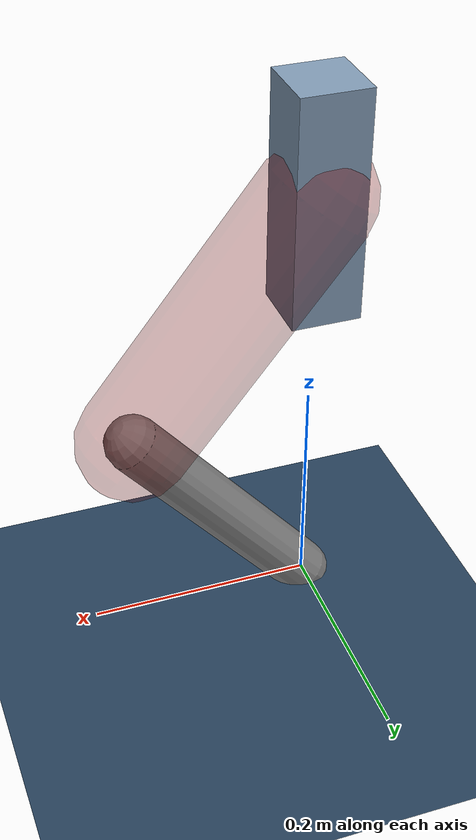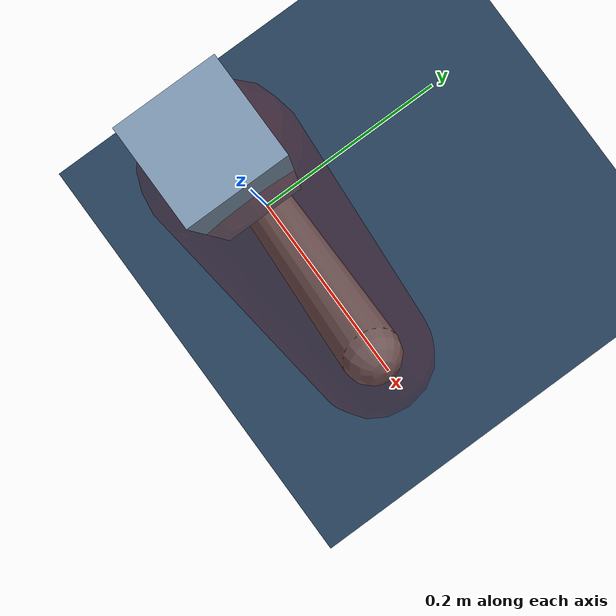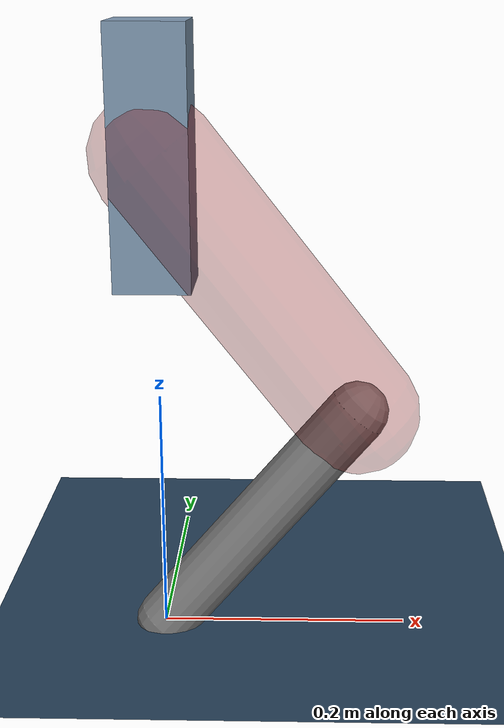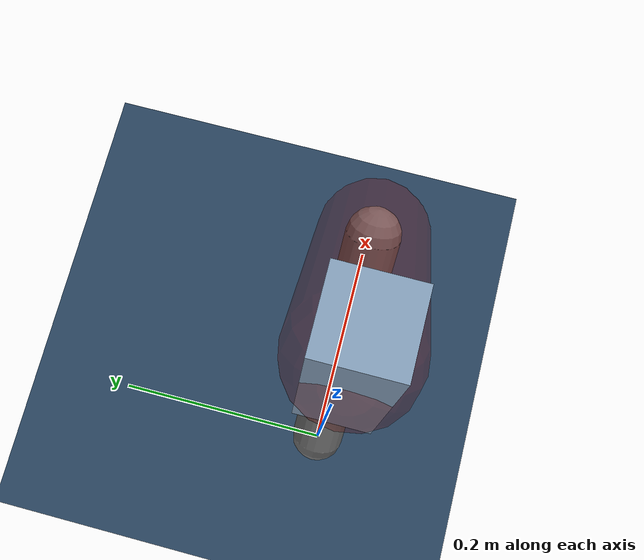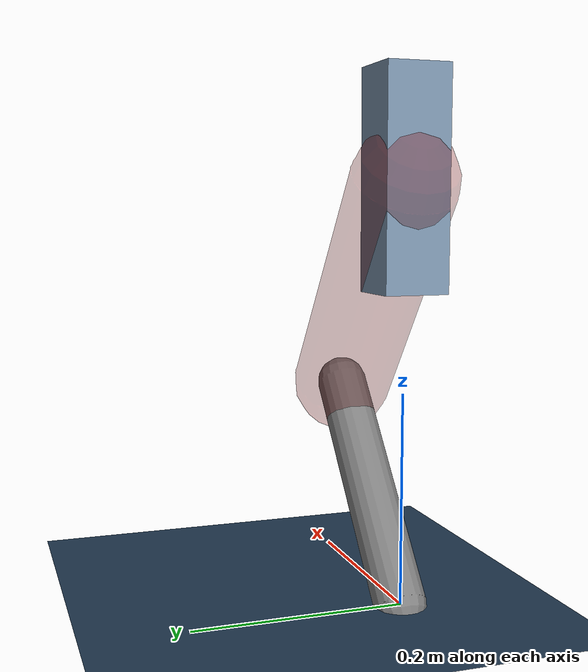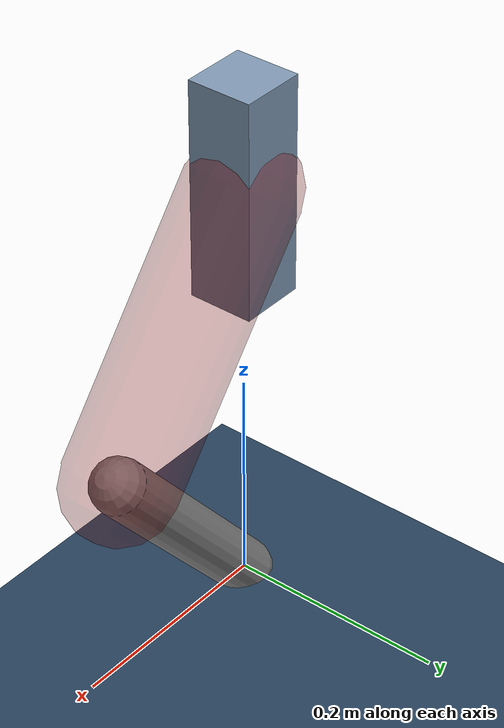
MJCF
<mujoco model="Hopper2D">
	<compiler inertiafromgeom="true" angle="radian" />
	<option timestep="0.001" integrator="implicit" cone="elliptic" solver="Newton" tolerance="1e-10" />

	<default>
		<geom contype="1" conaffinity="1" condim="3" friction="2 0.005 0.0001" solref="0.005 1" />
		<joint limited="true" damping="0.1" />
	</default>

	<asset>
		<texture name="skybox" type="skybox" builtin="gradient" rgb1=".4 .6 .8" rgb2="0 0 0" width="800" height="800" />
		<texture name="grid" type="2d" builtin="checker" rgb1=".1 .2 .3" rgb2=".2 .3 .4" width="300" height="300" mark="edge" markrgb=".2 .3 .4" />
		<material name="ground" texture="grid" texrepeat="1 1" texuniform="true" reflectance="0.1" />
		<material name="leg" rgba="0.5 0.6 0.7 1" />
	</asset>

	<worldbody>

		<geom name="floor" type="plane" size="5 5 0.25" material="ground" />

		<light directional="false" diffuse="0.8 0.8 0.8" specular="0.3 0.3 0.3" pos="0 0 2" dir="0 0 -1" />
		<light mode="targetbodycom" target="base" directional="false" diffuse="0.8 0.8 0.8" specular="0.3 0.3 0.3" pos="0 0 2" dir="0 0 -1" />

		<camera name="fixed" pos="0 -2 1" xyaxes="1 0 0 0 0 1" />
		<camera name="tracking" mode="trackcom" pos="0 -3 1" />

		<body name="root" pos="0 0 0.39229954173370113">
			<joint name="slide_x" type="slide" axis="1 0 0" range="-100 100" />
			<joint name="slide_z" type="slide" axis="0 0 1" range="0 10" />

			<body name="base" pos="0 0 0">
				<geom name="torso" type="box" size="0.03 0.03 0.1" mass="1.983" material="leg" />

				<body name="link1" pos="0 0 0" euler="0 0.9094413909460389 0">
					<joint type="hinge" axis="0 -1 0" pos="0 0 0" name="hinge1" limited="true" range="-3.14 3.14" stiffness="0" damping="0.1" />
					<geom name="thigh" type="capsule" fromto="0 0 0 0.25834925897601424 0 0" size="0.05" rgba="0.5 0 0 0.3" mass="0.878108073337637" />

					<body name="link2" pos="0.25834925897601424 0 0" euler="0 1.3612627976137839 0">
						<joint type="hinge" axis="0 -1 0" pos="0 0 0" name="hinge2" limited="true" range="-3.14 3.14" stiffness="0" damping="0.1" />
						<geom name="shank" type="capsule" fromto="0 0 0 0.2463329340992379 0 0" size="0.025" mass="0.4394996406893141" />

					</body>
				</body>
			</body>
		</body>
	</worldbody>

	<actuator>
		<motor name="torque1" joint="hinge1" ctrlrange="-71.99521327243387 71.99521327243387" ctrllimited="true" gear="1" />
		<motor name="torque2" joint="hinge2" ctrlrange="-27.73148208247476 27.73148208247476" ctrllimited="true" gear="1" />
	</actuator>
</mujoco>
